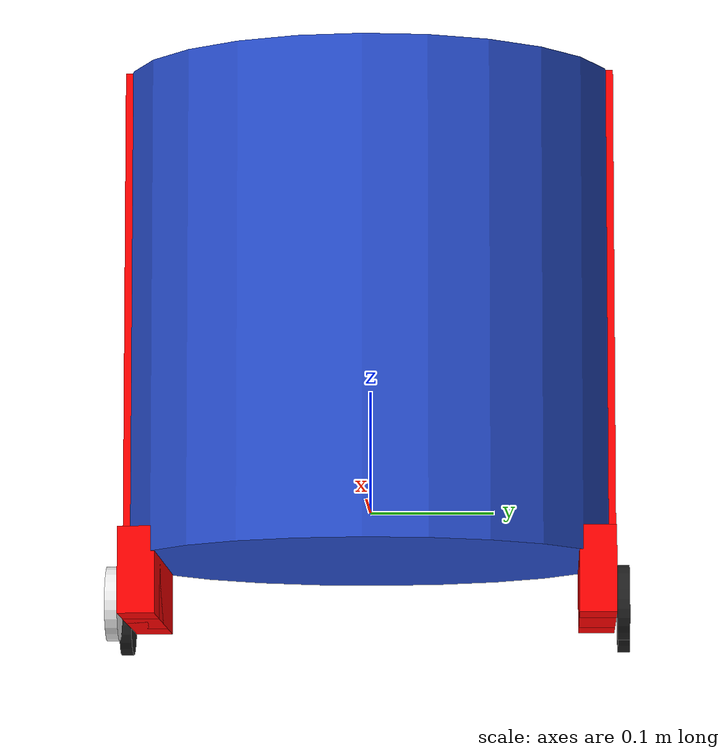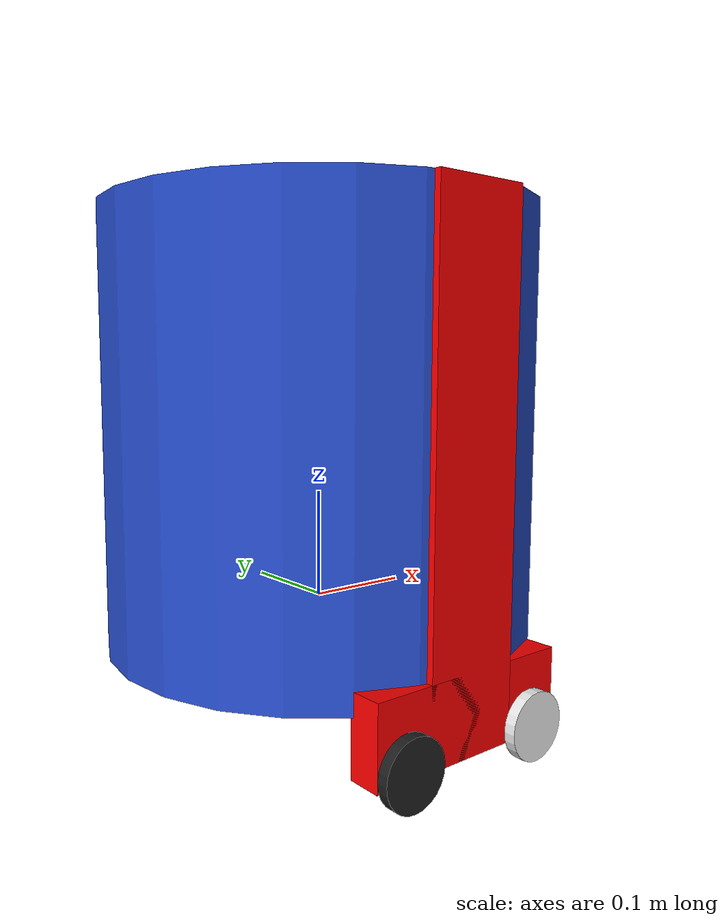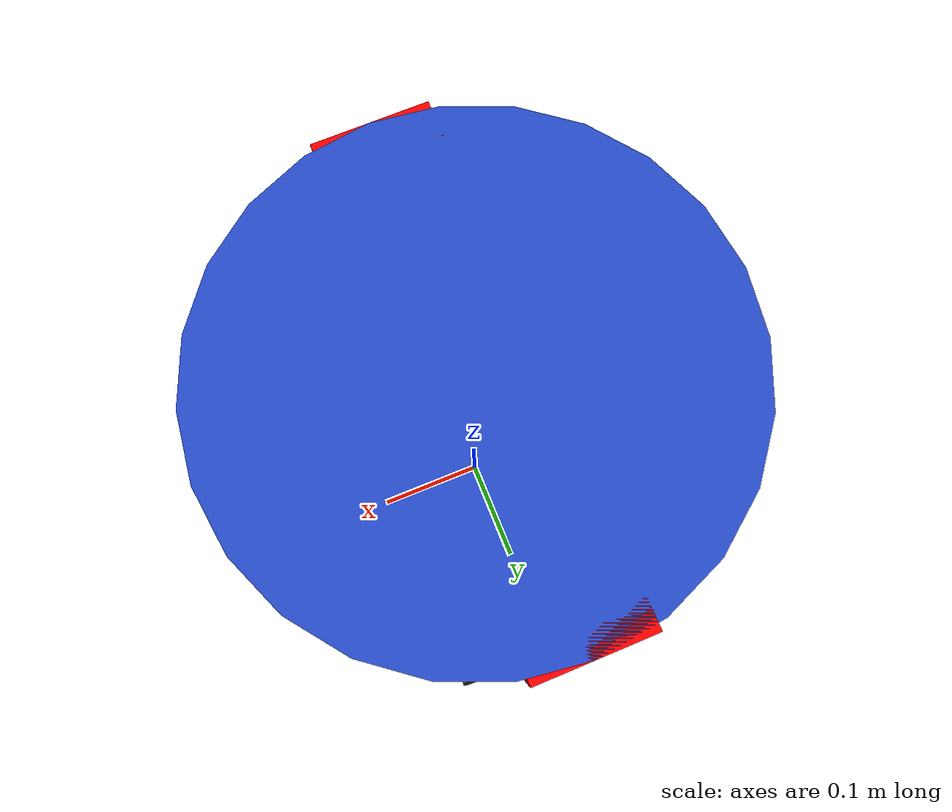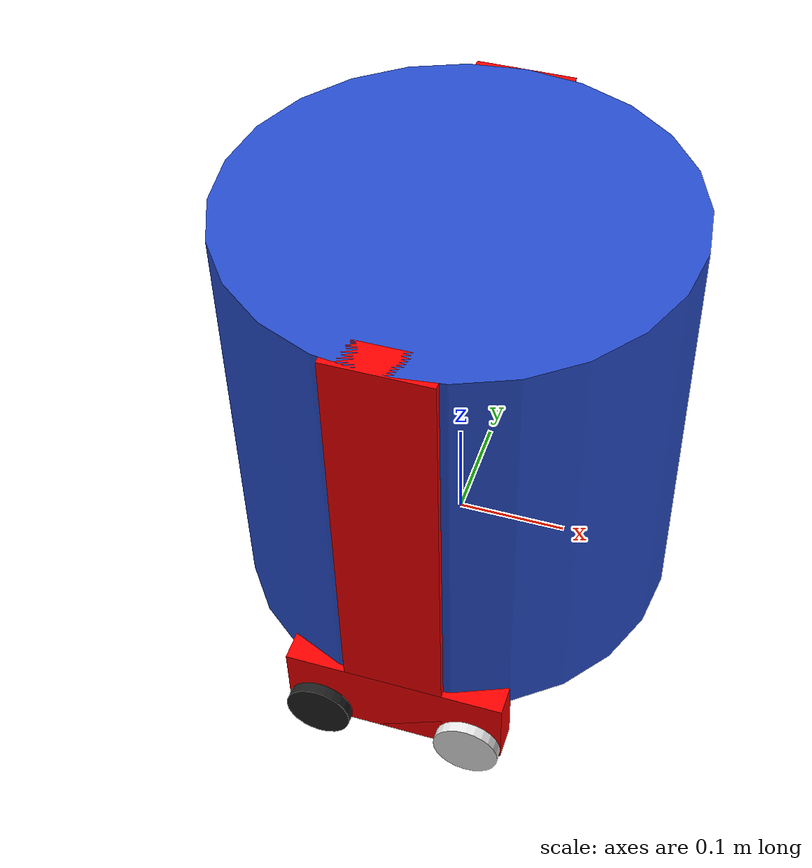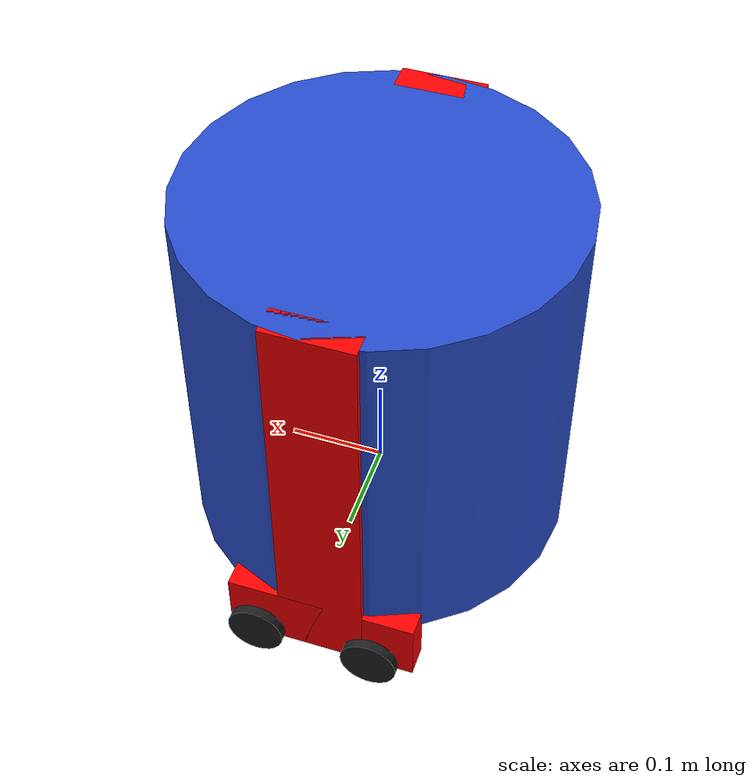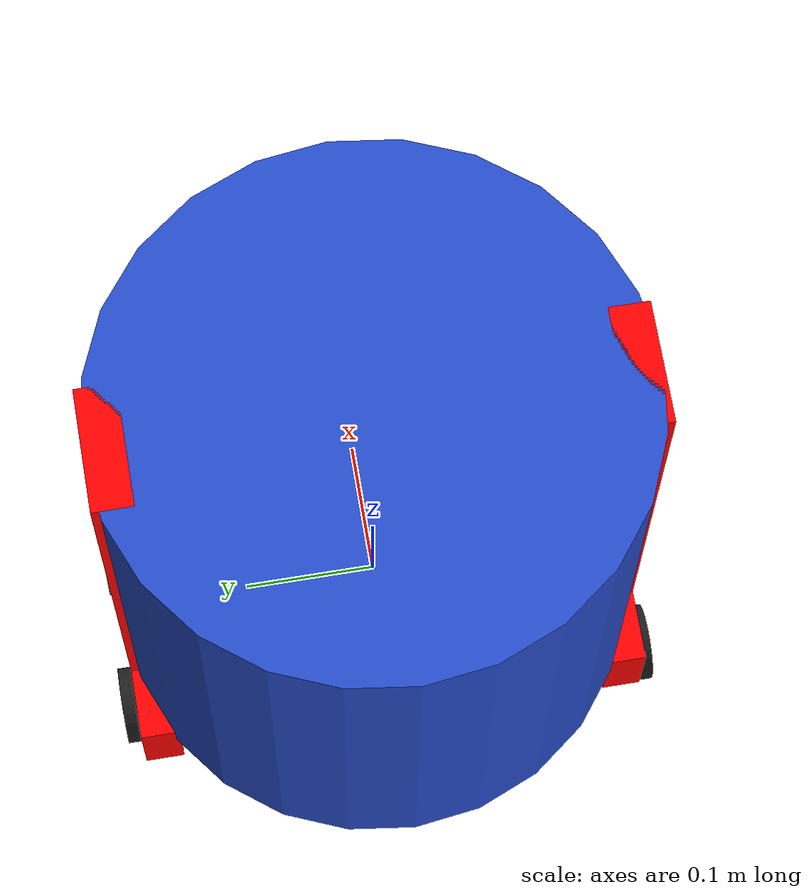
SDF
<?xml version='1.0'?>
<sdf version='1.6'>
  <model name='wheeled_robot_1'>
    <link name='link_0'>
      <pose frame=''>-0.001667 -0.000222 0.16 0 -0 0</pose>
      <inertial>
        <mass>1</mass>
        <inertia>
          <ixx>0.145833</ixx>
          <ixy>0</ixy>
          <ixz>0</ixz>
          <iyy>0.145833</iyy>
          <iyz>0</iyz>
          <izz>0.125</izz>
        </inertia>
        <pose frame=''>0 0 0 0 -0 0</pose>
      </inertial>
      <gravity>1</gravity>
      <self_collide>0</self_collide>
      <kinematic>0</kinematic>
      <visual name='visual'>
        <pose frame=''>0 0 0 0 -0 0</pose>
        <geometry>
          <cylinder>
            <radius>0.2</radius>
            <length>0.4</length>
          </cylinder>
        </geometry>
        <material>
          <lighting>1</lighting>
          <script>
            <uri>file://media/materials/scripts/gazebo.material</uri>
            <name>Gazebo/Blue</name>
          </script>
          <shader type='pixel'>
            <normal_map>__default__</normal_map>
          </shader>
          <ambient>0.4 0.4 0.4 1</ambient>
          <diffuse>0.25 0.25 0.25 1</diffuse>
          <specular>0.01 0.01 0.01 1</specular>
          <emissive>0 0 0 1</emissive>
        </material>
        <transparency>0</transparency>
        <cast_shadows>1</cast_shadows>
      </visual>
      <collision name='collision'>
        <laser_retro>0</laser_retro>
        <max_contacts>10</max_contacts>
        <pose frame=''>0 0 0 0 -0 0</pose>
        <geometry>
          <cylinder>
            <radius>0.2</radius>
            <length>0.4</length>
          </cylinder>
        </geometry>
        <surface>
          <friction>
            <ode>
              <mu>1</mu>
              <mu2>1</mu2>
              <fdir1>0 0 0</fdir1>
              <slip1>0</slip1>
              <slip2>0</slip2>
            </ode>
            <torsional>
              <coefficient>1</coefficient>
              <patch_radius>0</patch_radius>
              <surface_radius>0</surface_radius>
              <use_patch_radius>1</use_patch_radius>
              <ode>
                <slip>0</slip>
              </ode>
            </torsional>
          </friction>
          <bounce>
            <restitution_coefficient>0</restitution_coefficient>
            <threshold>1e+06</threshold>
          </bounce>
          <contact>
            <collide_without_contact>0</collide_without_contact>
            <collide_without_contact_bitmask>1</collide_without_contact_bitmask>
            <collide_bitmask>1</collide_bitmask>
            <ode>
              <soft_cfm>0</soft_cfm>
              <soft_erp>0.2</soft_erp>
              <kp>1e+13</kp>
              <kd>1</kd>
              <max_vel>0.01</max_vel>
              <min_depth>0</min_depth>
            </ode>
            <bullet>
              <split_impulse>1</split_impulse>
              <split_impulse_penetration_threshold>-0.01</split_impulse_penetration_threshold>
              <soft_cfm>0</soft_cfm>
              <soft_erp>0.2</soft_erp>
              <kp>1e+13</kp>
              <kd>1</kd>
            </bullet>
          </contact>
        </surface>
      </collision>
    </link>
    <link name='link_1'>
      <pose frame=''>-0.001667 -0.185222 0.135 0 -0 0</pose>
      <inertial>
        <mass>1</mass>
        <inertia>
          <ixx>0.166667</ixx>
          <ixy>0</ixy>
          <ixz>0</ixz>
          <iyy>0.166667</iyy>
          <iyz>0</iyz>
          <izz>0.166667</izz>
        </inertia>
        <pose frame=''>0 0 0 0 -0 0</pose>
      </inertial>
      <gravity>1</gravity>
      <self_collide>0</self_collide>
      <kinematic>0</kinematic>
      <visual name='visual'>
        <pose frame=''>0 0 0 0 -0 0</pose>
        <geometry>
          <box>
            <size>0.09 0.03 0.45</size>
          </box>
        </geometry>
        <material>
          <lighting>1</lighting>
          <script>
            <uri>file://media/materials/scripts/gazebo.material</uri>
            <name>Gazebo/Grey</name>
          </script>
          <shader type='pixel'>
            <normal_map>__default__</normal_map>
          </shader>
          <ambient>1 0 0 1</ambient>
          <diffuse>1 0 0 1</diffuse>
          <specular>0.1 0.1 0.1 1</specular>
          <emissive>0 0 0 0</emissive>
        </material>
        <transparency>0</transparency>
        <cast_shadows>1</cast_shadows>
      </visual>
      <collision name='collision'>
        <laser_retro>0</laser_retro>
        <max_contacts>10</max_contacts>
        <pose frame=''>0 0 0 0 -0 0</pose>
        <geometry>
          <box>
            <size>0.09 0.03 0.45</size>
          </box>
        </geometry>
        <surface>
          <friction>
            <ode>
              <mu>1</mu>
              <mu2>1</mu2>
              <fdir1>0 0 0</fdir1>
              <slip1>0</slip1>
              <slip2>0</slip2>
            </ode>
            <torsional>
              <coefficient>1</coefficient>
              <patch_radius>0</patch_radius>
              <surface_radius>0</surface_radius>
              <use_patch_radius>1</use_patch_radius>
              <ode>
                <slip>0</slip>
              </ode>
            </torsional>
          </friction>
          <bounce>
            <restitution_coefficient>0</restitution_coefficient>
            <threshold>1e+06</threshold>
          </bounce>
          <contact>
            <collide_without_contact>0</collide_without_contact>
            <collide_without_contact_bitmask>1</collide_without_contact_bitmask>
            <collide_bitmask>1</collide_bitmask>
            <ode>
              <soft_cfm>0</soft_cfm>
              <soft_erp>0.2</soft_erp>
              <kp>1e+13</kp>
              <kd>1</kd>
              <max_vel>0.01</max_vel>
              <min_depth>0</min_depth>
            </ode>
            <bullet>
              <split_impulse>1</split_impulse>
              <split_impulse_penetration_threshold>-0.01</split_impulse_penetration_threshold>
              <soft_cfm>0</soft_cfm>
              <soft_erp>0.2</soft_erp>
              <kp>1e+13</kp>
              <kd>1</kd>
            </bullet>
          </contact>
        </surface>
      </collision>
    </link>
    <link name='link_1_clone'>
      <pose frame=''>-0.001667 0.184778 0.135 0 -0 0</pose>
      <inertial>
        <mass>1</mass>
        <inertia>
          <ixx>0.166667</ixx>
          <ixy>0</ixy>
          <ixz>0</ixz>
          <iyy>0.166667</iyy>
          <iyz>0</iyz>
          <izz>0.166667</izz>
        </inertia>
        <pose frame=''>0 0 0 0 -0 0</pose>
      </inertial>
      <self_collide>0</self_collide>
      <kinematic>0</kinematic>
      <visual name='visual'>
        <pose frame=''>0 0 0 0 -0 0</pose>
        <geometry>
          <box>
            <size>0.09 0.03 0.45</size>
          </box>
        </geometry>
        <material>
          <lighting>1</lighting>
          <script>
            <uri>file://media/materials/scripts/gazebo.material</uri>
            <name>Gazebo/Grey</name>
          </script>
          <shader type='pixel'>
            <normal_map>__default__</normal_map>
          </shader>
             <ambient>1 0 0 1</ambient>
          <diffuse>1 0 0 1</diffuse>
          <specular>0.1 0.1 0.1 1</specular>
          <emissive>0 0 0 0</emissive>
        </material>
        <transparency>0</transparency>
        <cast_shadows>1</cast_shadows>
      </visual>
      <collision name='collision'>
        <laser_retro>0</laser_retro>
        <max_contacts>10</max_contacts>
        <pose frame=''>0 0 0 0 -0 0</pose>
        <geometry>
          <box>
            <size>0.09 0.03 0.45</size>
          </box>
        </geometry>
        <surface>
          <friction>
            <ode>
              <mu>1</mu>
              <mu2>1</mu2>
              <fdir1>0 0 0</fdir1>
              <slip1>0</slip1>
              <slip2>0</slip2>
            </ode>
            <torsional>
              <coefficient>1</coefficient>
              <patch_radius>0</patch_radius>
              <surface_radius>0</surface_radius>
              <use_patch_radius>1</use_patch_radius>
              <ode>
                <slip>0</slip>
              </ode>
            </torsional>
          </friction>
          <bounce>
            <restitution_coefficient>0</restitution_coefficient>
            <threshold>1e+06</threshold>
          </bounce>
          <contact>
            <collide_without_contact>0</collide_without_contact>
            <collide_without_contact_bitmask>1</collide_without_contact_bitmask>
            <collide_bitmask>1</collide_bitmask>
            <ode>
              <soft_cfm>0</soft_cfm>
              <soft_erp>0.2</soft_erp>
              <kp>1e+13</kp>
              <kd>1</kd>
              <max_vel>0.01</max_vel>
              <min_depth>0</min_depth>
            </ode>
            <bullet>
              <split_impulse>1</split_impulse>
              <split_impulse_penetration_threshold>-0.01</split_impulse_penetration_threshold>
              <soft_cfm>0</soft_cfm>
              <soft_erp>0.2</soft_erp>
              <kp>1e+13</kp>
              <kd>1</kd>
            </bullet>
          </contact>
        </surface>
      </collision>
    </link>
    <link name='link_2'>
      <pose frame=''>-0.001667 -0.185222 -0.055 0 -0 0</pose>
      <inertial>
        <mass>1</mass>
        <inertia>
          <ixx>0.166667</ixx>
          <ixy>0</ixy>
          <ixz>0</ixz>
          <iyy>0.166667</iyy>
          <iyz>0</iyz>
          <izz>0.166667</izz>
        </inertia>
        <pose frame=''>0 0 0 0 -0 0</pose>
      </inertial>
      <gravity>1</gravity>
      <self_collide>0</self_collide>
      <kinematic>0</kinematic>
      <visual name='visual'>
        <pose frame=''>0 0 0 0 -0 0</pose>
        <geometry>
          <box>
            <size>0.2 0.03 0.07</size>
          </box>
        </geometry>
        <material>
          <lighting>1</lighting>
          <script>
            <uri>file://media/materials/scripts/gazebo.material</uri>
            <name>Gazebo/Grey</name>
          </script>
          <shader type='pixel'>
            <normal_map>__default__</normal_map>
          </shader>
          <ambient>1 0 0 1</ambient>
          <diffuse>1 0 0 1</diffuse>
          <specular>0.1 0.1 0.1 1</specular>
          <emissive>0 0 0 0</emissive>
        </material>
        <transparency>0</transparency>
        <cast_shadows>1</cast_shadows>
      </visual>
      <collision name='collision'>
        <laser_retro>0</laser_retro>
        <max_contacts>10</max_contacts>
        <pose frame=''>0 0 0 0 -0 0</pose>
        <geometry>
          <box>
            <size>0.2 0.03 0.07</size>
          </box>
        </geometry>
        <surface>
          <friction>
            <ode>
              <mu>1</mu>
              <mu2>1</mu2>
              <fdir1>0 0 0</fdir1>
              <slip1>0</slip1>
              <slip2>0</slip2>
            </ode>
            <torsional>
              <coefficient>1</coefficient>
              <patch_radius>0</patch_radius>
              <surface_radius>0</surface_radius>
              <use_patch_radius>1</use_patch_radius>
              <ode>
                <slip>0</slip>
              </ode>
            </torsional>
          </friction>
          <bounce>
            <restitution_coefficient>0</restitution_coefficient>
            <threshold>1e+06</threshold>
          </bounce>
          <contact>
            <collide_without_contact>0</collide_without_contact>
            <collide_without_contact_bitmask>1</collide_without_contact_bitmask>
            <collide_bitmask>1</collide_bitmask>
            <ode>
              <soft_cfm>0</soft_cfm>
              <soft_erp>0.2</soft_erp>
              <kp>1e+13</kp>
              <kd>1</kd>
              <max_vel>0.01</max_vel>
              <min_depth>0</min_depth>
            </ode>
            <bullet>
              <split_impulse>1</split_impulse>
              <split_impulse_penetration_threshold>-0.01</split_impulse_penetration_threshold>
              <soft_cfm>0</soft_cfm>
              <soft_erp>0.2</soft_erp>
              <kp>1e+13</kp>
              <kd>1</kd>
            </bullet>
          </contact>
        </surface>
      </collision>
    </link>
    <link name='link_2_clone'>
      <pose frame=''>-0.001667 0.184778 -0.055 0 -0 0</pose>
      <inertial>
        <mass>1</mass>
        <inertia>
          <ixx>0.166667</ixx>
          <ixy>0</ixy>
          <ixz>0</ixz>
          <iyy>0.166667</iyy>
          <iyz>0</iyz>
          <izz>0.166667</izz>
        </inertia>
        <pose frame=''>0 0 0 0 -0 0</pose>
      </inertial>
      <self_collide>0</self_collide>
      <kinematic>0</kinematic>
      <visual name='visual'>
        <pose frame=''>0 0 0 0 -0 0</pose>
        <geometry>
          <box>
            <size>0.2 0.03 0.07</size>
          </box>
        </geometry>
        <material>
          <lighting>1</lighting>
          <script>
            <uri>file://media/materials/scripts/gazebo.material</uri>
            <name>Gazebo/Grey</name>
          </script>
          <shader type='pixel'>
            <normal_map>__default__</normal_map>
          </shader>
          <ambient>1 0 0 1</ambient>
          <diffuse>1 0 0 1</diffuse>
          <specular>0.1 0.1 0.1 1</specular>
          <emissive>0 0 0 0</emissive>
        </material>
        <transparency>0</transparency>
        <cast_shadows>1</cast_shadows>
      </visual>
      <collision name='collision'>
        <laser_retro>0</laser_retro>
        <max_contacts>10</max_contacts>
        <pose frame=''>0 0 0 0 -0 0</pose>
        <geometry>
          <box>
            <size>0.2 0.03 0.07</size>
          </box>
        </geometry>
        <surface>
          <friction>
            <ode>
              <mu>1</mu>
              <mu2>1</mu2>
              <fdir1>0 0 0</fdir1>
              <slip1>0</slip1>
              <slip2>0</slip2>
            </ode>
            <torsional>
              <coefficient>1</coefficient>
              <patch_radius>0</patch_radius>
              <surface_radius>0</surface_radius>
              <use_patch_radius>1</use_patch_radius>
              <ode>
                <slip>0</slip>
              </ode>
            </torsional>
          </friction>
          <bounce>
            <restitution_coefficient>0</restitution_coefficient>
            <threshold>1e+06</threshold>
          </bounce>
          <contact>
            <collide_without_contact>0</collide_without_contact>
            <collide_without_contact_bitmask>1</collide_without_contact_bitmask>
            <collide_bitmask>1</collide_bitmask>
            <ode>
              <soft_cfm>0</soft_cfm>
              <soft_erp>0.2</soft_erp>
              <kp>1e+13</kp>
              <kd>1</kd>
              <max_vel>0.01</max_vel>
              <min_depth>0</min_depth>
            </ode>
            <bullet>
              <split_impulse>1</split_impulse>
              <split_impulse_penetration_threshold>-0.01</split_impulse_penetration_threshold>
              <soft_cfm>0</soft_cfm>
              <soft_erp>0.2</soft_erp>
              <kp>1e+13</kp>
              <kd>1</kd>
            </bullet>
          </contact>
        </surface>
      </collision>
    </link>
    <link name='link_3'>
      <pose frame=''>-0.056667 0.206778 -0.08 0 -0 0</pose>
      <inertial>
        <mass>1</mass>
        <inertia>
          <ixx>0.145833</ixx>
          <ixy>0</ixy>
          <ixz>0</ixz>
          <iyy>0.145833</iyy>
          <iyz>0</iyz>
          <izz>0.125</izz>
        </inertia>
        <pose frame=''>0 0 0 0 -0 0</pose>
      </inertial>
      <gravity>1</gravity>
      <self_collide>0</self_collide>
      <kinematic>0</kinematic>
      <visual name='visual'>
        <pose frame=''>0 0 0 1.571 -0 0</pose>
        <geometry>
          <cylinder>
            <radius>0.03</radius>
            <length>0.01</length>
          </cylinder>
        </geometry>
        <material>
          <lighting>1</lighting>
          <script>
            <uri>file://media/materials/scripts/gazebo.material</uri>
            <name>Gazebo/Black</name>
          </script>
          <shader type='pixel'>
            <normal_map>__default__</normal_map>
          </shader>
          <ambient>0.1 0.1 0.1 1</ambient>
          <diffuse>0.1 0.1 0.2 1</diffuse>
          <specular>0 0 0 0</specular>
          <emissive>0 0 0 1</emissive>
        </material>
        <transparency>0</transparency>
        <cast_shadows>1</cast_shadows>
      </visual>
      <collision name='collision'>
        <laser_retro>0</laser_retro>
        <max_contacts>10</max_contacts>
        <pose frame=''>0 0 0 1.571 -0 0</pose>
        <geometry>
          <cylinder>
            <radius>0.03</radius>
            <length>0.01</length>
          </cylinder>
        </geometry>
        <surface>
          <friction>
            <ode>
              <mu>1</mu>
              <mu2>1</mu2>
              <fdir1>0 0 0</fdir1>
              <slip1>0</slip1>
              <slip2>0</slip2>
            </ode>
            <torsional>
              <coefficient>1</coefficient>
              <patch_radius>0</patch_radius>
              <surface_radius>0</surface_radius>
              <use_patch_radius>1</use_patch_radius>
              <ode>
                <slip>0</slip>
              </ode>
            </torsional>
          </friction>
          <bounce>
            <restitution_coefficient>0</restitution_coefficient>
            <threshold>1e+06</threshold>
          </bounce>
          <contact>
            <collide_without_contact>0</collide_without_contact>
            <collide_without_contact_bitmask>1</collide_without_contact_bitmask>
            <collide_bitmask>1</collide_bitmask>
            <ode>
              <soft_cfm>0</soft_cfm>
              <soft_erp>0.2</soft_erp>
              <kp>1e+13</kp>
              <kd>1</kd>
              <max_vel>0.01</max_vel>
              <min_depth>0</min_depth>
            </ode>
            <bullet>
              <split_impulse>1</split_impulse>
              <split_impulse_penetration_threshold>-0.01</split_impulse_penetration_threshold>
              <soft_cfm>0</soft_cfm>
              <soft_erp>0.2</soft_erp>
              <kp>1e+13</kp>
              <kd>1</kd>
            </bullet>
          </contact>
        </surface>
      </collision>
    </link>
    <link name='link_3_clone'>
      <pose frame=''>0.068333 0.204784 -0.08 0 -0 0</pose>
      <inertial>
        <mass>1</mass>
        <inertia>
          <ixx>0.145833</ixx>
          <ixy>0</ixy>
          <ixz>0</ixz>
          <iyy>0.145833</iyy>
          <iyz>0</iyz>
          <izz>0.125</izz>
        </inertia>
        <pose frame=''>0 0 0 0 -0 0</pose>
      </inertial>
      <self_collide>0</self_collide>
      <kinematic>0</kinematic>
      <gravity>1</gravity>
      <visual name='visual'>
        <pose frame=''>0 0 0 1.571 -0 0</pose>
        <geometry>
          <cylinder>
            <radius>0.03</radius>
            <length>0.01</length>
          </cylinder>
        </geometry>
        <material>
          <lighting>1</lighting>
          <script>
            <uri>file://media/materials/scripts/gazebo.material</uri>
            <name>Gazebo/Black</name>
          </script>
          <shader type='pixel'>
            <normal_map>__default__</normal_map>
          </shader>
          <ambient>0.1 0.1 0.1 1</ambient>
          <diffuse>0.1 0.1 0.2 1</diffuse>
          <specular>0 0 0 0</specular>
          <emissive>0 0 0 1</emissive>
        </material>
        <transparency>0</transparency>
        <cast_shadows>1</cast_shadows>
      </visual>
      <collision name='collision'>
        <laser_retro>0</laser_retro>
        <max_contacts>10</max_contacts>
        <pose frame=''>0 0 0 1.571 -0 0</pose>
        <geometry>
          <cylinder>
            <radius>0.03</radius>
            <length>0.01</length>
          </cylinder>
        </geometry>
        <surface>
          <friction>
            <ode>
              <mu>1</mu>
              <mu2>1</mu2>
              <fdir1>0 0 0</fdir1>
              <slip1>0</slip1>
              <slip2>0</slip2>
            </ode>
            <torsional>
              <coefficient>1</coefficient>
              <patch_radius>0</patch_radius>
              <surface_radius>0</surface_radius>
              <use_patch_radius>1</use_patch_radius>
              <ode>
                <slip>0</slip>
              </ode>
            </torsional>
          </friction>
          <bounce>
            <restitution_coefficient>0</restitution_coefficient>
            <threshold>1e+06</threshold>
          </bounce>
          <contact>
            <collide_without_contact>0</collide_without_contact>
            <collide_without_contact_bitmask>1</collide_without_contact_bitmask>
            <collide_bitmask>1</collide_bitmask>
            <ode>
              <soft_cfm>0</soft_cfm>
              <soft_erp>0.2</soft_erp>
              <kp>1e+13</kp>
              <kd>1</kd>
              <max_vel>0.01</max_vel>
              <min_depth>0</min_depth>
            </ode>
            <bullet>
              <split_impulse>1</split_impulse>
              <split_impulse_penetration_threshold>-0.01</split_impulse_penetration_threshold>
              <soft_cfm>0</soft_cfm>
              <soft_erp>0.2</soft_erp>
              <kp>1e+13</kp>
              <kd>1</kd>
            </bullet>
          </contact>
        </surface>
      </collision>
    </link>
    <link name='link_3_clone_clone'>
      <pose frame=''>0.068333 -0.205228 -0.08 0 -0 0</pose>
      <inertial>
        <mass>1</mass>
        <inertia>
          <ixx>0.145833</ixx>
          <ixy>0</ixy>
          <ixz>0</ixz>
          <iyy>0.145833</iyy>
          <iyz>0</iyz>
          <izz>0.125</izz>
        </inertia>
        <pose frame=''>0 0 0 0 -0 0</pose>
      </inertial>
      <self_collide>0</self_collide>
      <kinematic>0</kinematic>
      <gravity>1</gravity>
      <visual name='visual'>
        <pose frame=''>0 0 0 1.571 -0 0</pose>
        <geometry>
          <cylinder>
            <radius>0.03</radius>
            <length>0.01</length>
          </cylinder>
        </geometry>
        <material>
          <lighting>1</lighting>
          <script>
            <uri>file://media/materials/scripts/gazebo.material</uri>
            <name>Gazebo/White</name>
          </script>
          <shader type='pixel'>
            <normal_map>__default__</normal_map>
          </shader>
          <ambient>0.1 0.1 0.1 1</ambient>
          <diffuse>0.1 0.1 0.2 1</diffuse>
          <specular>0 0 0 0</specular>
          <emissive>0 0 0 1</emissive>
        </material>
        <transparency>0</transparency>
        <cast_shadows>1</cast_shadows>
      </visual>
      <collision name='collision'>
        <laser_retro>0</laser_retro>
        <max_contacts>10</max_contacts>
        <pose frame=''>0 0 0 1.571 -0 0</pose>
        <geometry>
          <cylinder>
            <radius>0.03</radius>
            <length>0.01</length>
          </cylinder>
        </geometry>
        <surface>
          <friction>
            <ode>
              <mu>1</mu>
              <mu2>1</mu2>
              <fdir1>0 0 0</fdir1>
              <slip1>0</slip1>
              <slip2>0</slip2>
            </ode>
            <torsional>
              <coefficient>1</coefficient>
              <patch_radius>0</patch_radius>
              <surface_radius>0</surface_radius>
              <use_patch_radius>1</use_patch_radius>
              <ode>
                <slip>0</slip>
              </ode>
            </torsional>
          </friction>
          <bounce>
            <restitution_coefficient>0</restitution_coefficient>
            <threshold>1e+06</threshold>
          </bounce>
          <contact>
            <collide_without_contact>0</collide_without_contact>
            <collide_without_contact_bitmask>1</collide_without_contact_bitmask>
            <collide_bitmask>1</collide_bitmask>
            <ode>
              <soft_cfm>0</soft_cfm>
              <soft_erp>0.2</soft_erp>
              <kp>1e+13</kp>
              <kd>1</kd>
              <max_vel>0.01</max_vel>
              <min_depth>0</min_depth>
            </ode>
            <bullet>
              <split_impulse>1</split_impulse>
              <split_impulse_penetration_threshold>-0.01</split_impulse_penetration_threshold>
              <soft_cfm>0</soft_cfm>
              <soft_erp>0.2</soft_erp>
              <kp>1e+13</kp>
              <kd>1</kd>
            </bullet>
          </contact>
        </surface>
      </collision>
    </link>
    <link name='link_3_clone_clone_clone'>
      <pose frame=''>-0.071667 -0.205228 -0.08 0 -0 0</pose>
      <inertial>
        <mass>1</mass>
        <inertia>
          <ixx>0.145833</ixx>
          <ixy>0</ixy>
          <ixz>0</ixz>
          <iyy>0.145833</iyy>
          <iyz>0</iyz>
          <izz>0.125</izz>
        </inertia>
        <pose frame=''>0 0 0 0 -0 0</pose>
      </inertial>
      <self_collide>0</self_collide>
      <kinematic>0</kinematic>
      <gravity>1</gravity>
      <visual name='visual'>
        <pose frame=''>0 0 0 1.571 -0 0</pose>
        <geometry>
          <cylinder>
            <radius>0.03</radius>
            <length>0.01</length>
          </cylinder>
        </geometry>
        <material>
          <lighting>1</lighting>
          <script>
            <uri>file://media/materials/scripts/gazebo.material</uri>
            <name>Gazebo/Black</name>
          </script>
          <shader type='pixel'>
            <normal_map>__default__</normal_map>
          </shader>
          <ambient>0.1 0.1 0.1 1</ambient>
          <diffuse>0.1 0.1 0.2 1</diffuse>
          <specular>0 0 0 0</specular>
          <emissive>0 0 0 1</emissive>
        </material>
        <transparency>0</transparency>
        <cast_shadows>1</cast_shadows>
      </visual>
      <collision name='collision'>
        <laser_retro>0</laser_retro>
        <max_contacts>10</max_contacts>
        <pose frame=''>0 0 0 1.571 -0 0</pose>
        <geometry>
          <cylinder>
            <radius>0.03</radius>
            <length>0.01</length>
          </cylinder>
        </geometry>
        <surface>
          <friction>
            <ode>
              <mu>1</mu>
              <mu2>1</mu2>
              <fdir1>0 0 0</fdir1>
              <slip1>0</slip1>
              <slip2>0</slip2>
            </ode>
            <torsional>
              <coefficient>1</coefficient>
              <patch_radius>0</patch_radius>
              <surface_radius>0</surface_radius>
              <use_patch_radius>1</use_patch_radius>
              <ode>
                <slip>0</slip>
              </ode>
            </torsional>
          </friction>
          <bounce>
            <restitution_coefficient>0</restitution_coefficient>
            <threshold>1e+06</threshold>
          </bounce>
          <contact>
            <collide_without_contact>0</collide_without_contact>
            <collide_without_contact_bitmask>1</collide_without_contact_bitmask>
            <collide_bitmask>1</collide_bitmask>
            <ode>
              <soft_cfm>0</soft_cfm>
              <soft_erp>0.2</soft_erp>
              <kp>1e+13</kp>
              <kd>1</kd>
              <max_vel>0.01</max_vel>
              <min_depth>0</min_depth>
            </ode>
            <bullet>
              <split_impulse>1</split_impulse>
              <split_impulse_penetration_threshold>-0.01</split_impulse_penetration_threshold>
              <soft_cfm>0</soft_cfm>
              <soft_erp>0.2</soft_erp>
              <kp>1e+13</kp>
              <kd>1</kd>
            </bullet>
          </contact>
        </surface>
      </collision>
    </link>
    <joint name='link_0_JOINT_3' type='fixed'>
      <parent>link_0</parent>
      <child>link_1</child>
      <pose frame=''>0 0 0 0 -0.01 0</pose>
      <physics>
        <ode>
          <limit>
            <cfm>0</cfm>
            <erp>0.2</erp>
          </limit>
          <suspension>
            <cfm>0</cfm>
            <erp>0.2</erp>
          </suspension>
        </ode>
      </physics>
    </joint>
    <joint name='link_0_JOINT_5' type='fixed'>
      <parent>link_0</parent>
      <child>link_1_clone</child>
      <pose frame=''>0 0 0 0 -0 0</pose>
      <physics>
        <ode>
          <limit>
            <cfm>0</cfm>
            <erp>0.2</erp>
          </limit>
          <suspension>
            <cfm>0</cfm>
            <erp>0.2</erp>
          </suspension>
        </ode>
      </physics>
    </joint>
    <joint name='link_1_JOINT_6' type='fixed'>
      <parent>link_1</parent>
      <child>link_2</child>
      <pose frame=''>0 0 0 0 -0 0</pose>
      <physics>
        <ode>
          <limit>
            <cfm>0</cfm>
            <erp>0.2</erp>
          </limit>
          <suspension>
            <cfm>0</cfm>
            <erp>0.2</erp>
          </suspension>
        </ode>
      </physics>
    </joint>
    <joint name='link_1_clone_JOINT_7' type='fixed'>
      <parent>link_1_clone</parent>
      <child>link_2_clone</child>
      <pose frame=''>0 0 0 0 -0 0</pose>
      <physics>
        <ode>
          <limit>
            <cfm>0</cfm>
            <erp>0.2</erp>
          </limit>
          <suspension>
            <cfm>0</cfm>
            <erp>0.2</erp>
          </suspension>
        </ode>
      </physics>
    </joint>
    <joint name='link_2_JOINT_12' type='revolute'>
      <parent>link_2</parent>
      <child>link_3_clone_clone_clone</child>
      <pose frame=''>0 0 0 0 -0 0</pose>
      <axis>
        <xyz>-0.02 1 0</xyz>
        <use_parent_model_frame>0</use_parent_model_frame>
        <limit>
          <lower>-1.79769e+308</lower>
          <upper>1.79769e+308</upper>
          <effort>-1</effort>
          <velocity>-1</velocity>
        </limit>
        <dynamics>
          <spring_reference>0</spring_reference>
          <spring_stiffness>0</spring_stiffness>
          <damping>0</damping>
        </dynamics>
      </axis>
      <physics>
        <ode>
          <limit>
            <cfm>0</cfm>
            <erp>0.2</erp>
          </limit>
          <suspension>
            <cfm>0</cfm>
            <erp>0.2</erp>
          </suspension>
        </ode>
      </physics>
    </joint>
    <joint name='link_2_JOINT_13' type='revolute'>
      <parent>link_2</parent>
      <child>link_3_clone_clone</child>
      <pose frame=''>0 0 0 0 -0 0</pose>
      <axis>
        <xyz>0 1 0</xyz>
        <use_parent_model_frame>0</use_parent_model_frame>
        <limit>
          <lower>-1.79769e+308</lower>
          <upper>1.79769e+308</upper>
          <effort>-1</effort>
          <velocity>-1</velocity>
        </limit>
        <dynamics>
          <spring_reference>0</spring_reference>
          <spring_stiffness>0</spring_stiffness>
          <damping>0</damping>
        </dynamics>
      </axis>
      <physics>
        <ode>
          <limit>
            <cfm>0</cfm>
            <erp>0.2</erp>
          </limit>
          <suspension>
            <cfm>0</cfm>
            <erp>0.2</erp>
          </suspension>
        </ode>
      </physics>
    </joint>
    <joint name='link_2_clone_JOINT_10' type='revolute'>
      <parent>link_2_clone</parent>
      <child>link_3</child>
      <pose frame=''>0 0 0 0 -0 0</pose>
      <axis>
        <xyz>0 1 0</xyz>
        <use_parent_model_frame>0</use_parent_model_frame>
        <limit>
          <lower>-1.79769e+308</lower>
          <upper>1.79769e+308</upper>
          <effort>-1</effort>
          <velocity>-1</velocity>
        </limit>
        <dynamics>
          <spring_reference>0</spring_reference>
          <spring_stiffness>0</spring_stiffness>
          <damping>0</damping>
        </dynamics>
      </axis>
      <physics>
        <ode>
          <limit>
            <cfm>0</cfm>
            <erp>0.2</erp>
          </limit>
          <suspension>
            <cfm>0</cfm>
            <erp>0.2</erp>
          </suspension>
        </ode>
      </physics>
    </joint>
    <joint name='link_2_clone_JOINT_11' type='revolute'>
      <parent>link_2_clone</parent>
      <child>link_3_clone</child>
      <pose frame=''>0 0 0 0 -0 0</pose>
      <axis>
        <xyz>0 1 0</xyz>
        <use_parent_model_frame>0</use_parent_model_frame>
        <limit>
          <lower>-1.79769e+308</lower>
          <upper>1.79769e+308</upper>
          <effort>-1</effort>
          <velocity>-1</velocity>
        </limit>
        <dynamics>
          <spring_reference>0</spring_reference>
          <spring_stiffness>0</spring_stiffness>
          <damping>0</damping>
        </dynamics>
      </axis>
      <physics>
        <ode>
          <limit>
            <cfm>0</cfm>
            <erp>0.2</erp>
          </limit>
          <suspension>
            <cfm>0</cfm>
            <erp>0.2</erp>
          </suspension>
        </ode>
      </physics>
    </joint>
    <static>0</static>
    <allow_auto_disable>1</allow_auto_disable>
  </model>
</sdf>
